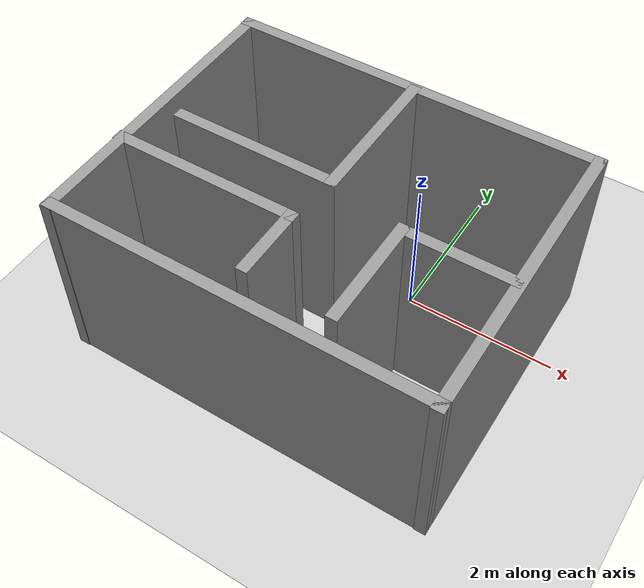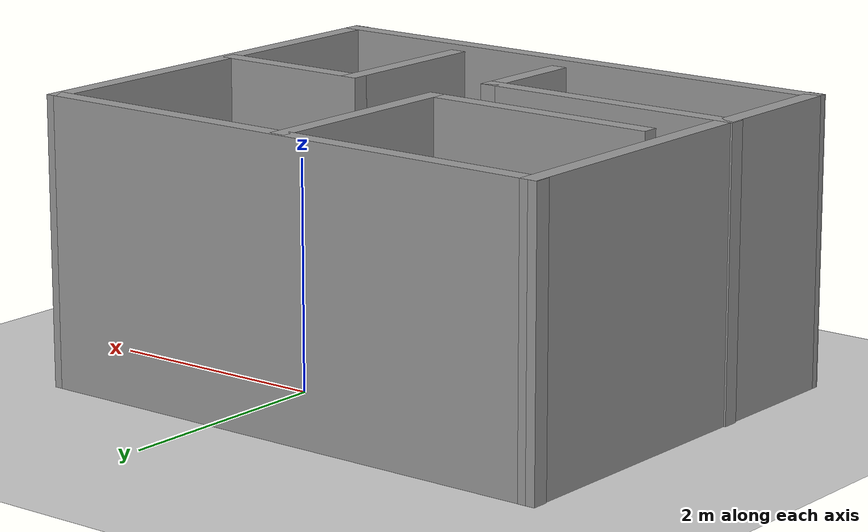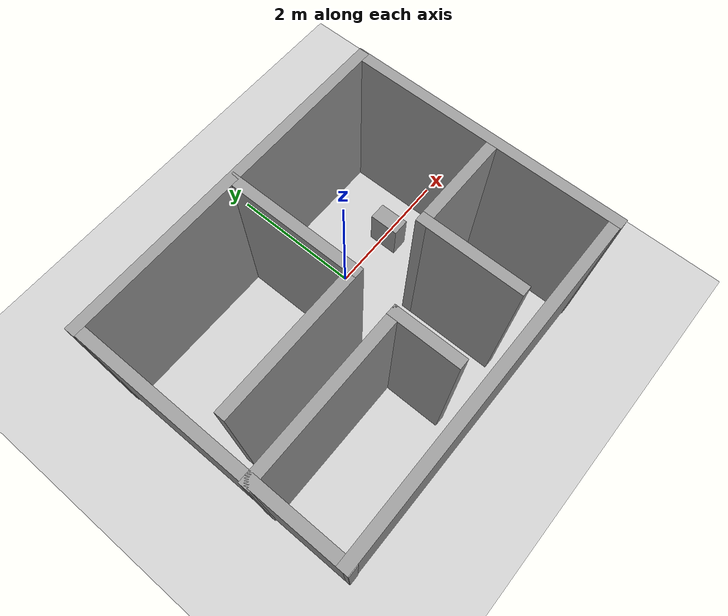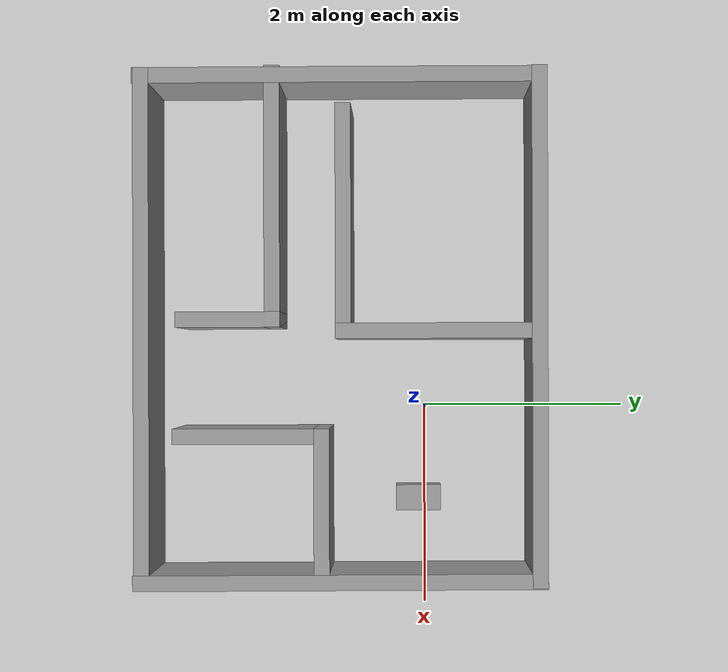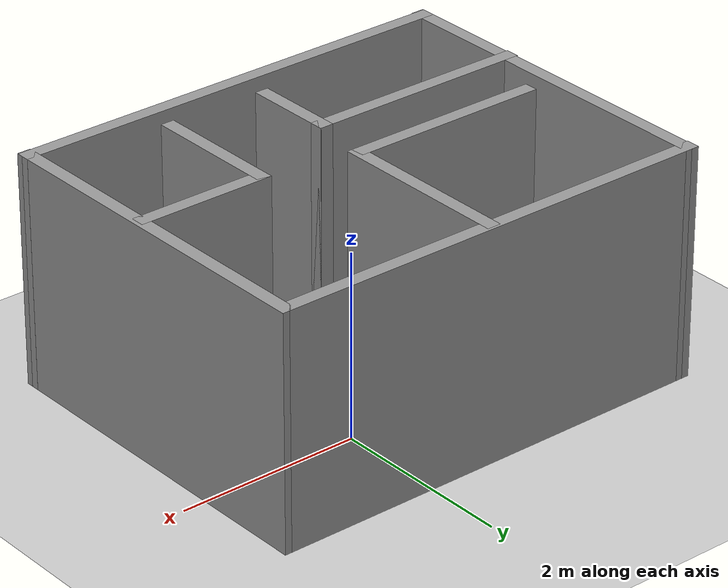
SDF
<sdf version="1.7">
 <world name="default">
  <light name="sun" type="directional">
   <pose>0 0 10 0 -0 0</pose>
   <diffuse>0.8 0.8 0.8 1</diffuse>
   <specular>0.2 0.2 0.2 1</specular>
   <attenuation>
    <range>1000</range>
    <constant>0.9</constant>
    <linear>0.01</linear>
    <quadratic>0.001</quadratic>
   </attenuation>
   <direction>-0.5 0.1 -0.9</direction>
   <spot><inner_angle>0</inner_angle><outer_angle>0</outer_angle><falloff>0</falloff></spot>
  </light>
  <model name="ground_plane">
   <static>1</static>
   <link name="link">
    <collision name="collision">
     <geometry><plane><normal>0 0 1</normal><size>100 100</size></plane></geometry>
     <surface>
      <contact><collide_bitmask>65535</collide_bitmask></contact>
      <friction><ode><mu>100</mu><mu2>50</mu2></ode></friction>
     </surface>
    </collision>
    <visual name="visual">
     <cast_shadows>0</cast_shadows>
     <geometry><plane><normal>0 0 1</normal><size>100 100</size></plane></geometry>
     <material>
      <script><uri>file://media/materials/scripts/gazebo.material</uri><name>Gazebo/Grey</name></script>
     </material>
    </visual>
   </link>
  </model>
  <gravity>0 0 -9.8</gravity>
  <magnetic_field>6e-06 2.3e-05 -4.2e-05</magnetic_field>
  <atmosphere type="adiabatic"/>
  <physics type="ode">
   <max_step_size>0.001</max_step_size>
   <real_time_factor>1</real_time_factor>
   <real_time_update_rate>1000</real_time_update_rate>
  </physics>
  <scene><ambient>0.4 0.4 0.4 1</ambient><background>0.7 0.7 0.7 1</background><shadows>1</shadows></scene>
  <audio><device>default</device></audio>
  <spherical_coordinates>
   <surface_model>EARTH_WGS84</surface_model>
   <latitude_deg>0</latitude_deg>
   <longitude_deg>0</longitude_deg>
   <elevation>0</elevation>
   <heading_deg>0</heading_deg>
  </spherical_coordinates>
  <model name="bedrooms">
   <pose>-2.23381 0.186808 0 0 -0 0</pose>
   <link name="Wall_0">
    <collision name="Wall_0_Collision">
     <geometry><box><size>5 0.15 2.5</size></box></geometry>
     <pose>0 0 1.25 0 -0 0</pose>
    </collision>
    <visual name="Wall_0_Visual">
     <pose>0 0 1.25 0 -0 0</pose>
     <geometry><box><size>5 0.15 2.5</size></box></geometry>
     <material>
      <script><uri>file://media/materials/scripts/gazebo.material</uri><name>Gazebo/Grey</name></script>
      <ambient>1 1 1 1</ambient>
     </material>
     <meta><layer>0</layer></meta>
    </visual>
    <pose>1.4674 0.912598 0 0 -0 0</pose>
   </link>
   <link name="Wall_1">
    <collision name="Wall_1_Collision">
     <geometry><box><size>3.97001 0.15 2.5</size></box></geometry>
     <pose>0 0 1.25 0 -0 0</pose>
    </collision>
    <visual name="Wall_1_Visual">
     <pose>0 0 1.25 0 -0 0</pose>
     <geometry><box><size>3.97001 0.15 2.5</size></box></geometry>
     <material>
      <script><uri>file://media/materials/scripts/gazebo.material</uri><name>Gazebo/Grey</name></script>
      <ambient>1 1 1 1</ambient>
     </material>
     <meta><layer>0</layer></meta>
    </visual>
    <pose>3.9074 -0.997402 0 0 -0 -1.56818</pose>
   </link>
   <link name="Wall_10">
    <collision name="Wall_10_Collision">
     <geometry><box><size>1 0.15 2.5</size></box></geometry>
     <pose>0 0 1.25 0 -0 0</pose>
    </collision>
    <visual name="Wall_10_Visual">
     <pose>0 0 1.25 0 -0 0</pose>
     <geometry><box><size>1 0.15 2.5</size></box></geometry>
     <material>
      <script><uri>file://media/materials/scripts/gazebo.material</uri><name>Gazebo/Grey</name></script>
      <ambient>1 1 1 1</ambient>
     </material>
     <meta><layer>0</layer></meta>
    </visual>
    <pose>1.3924 -2.0724 0 0 -0 -1.5708</pose>
   </link>
   <link name="Wall_12">
    <collision name="Wall_12_Collision">
     <geometry><box><size>1.5 0.15 2.5</size></box></geometry>
     <pose>0 0 1.25 0 -0 0</pose>
    </collision>
    <visual name="Wall_12_Visual">
     <pose>0 0 1.25 0 -0 0</pose>
     <geometry><box><size>1.5 0.15 2.5</size></box></geometry>
     <material>
      <script><uri>file://media/materials/scripts/gazebo.material</uri><name>Gazebo/Grey</name></script>
      <ambient>1 1 1 1</ambient>
     </material>
     <meta><layer>0</layer></meta>
    </visual>
    <pose>3.1874 -1.1774 0 0 -0 3.14159</pose>
   </link>
   <link name="Wall_13">
    <collision name="Wall_13_Collision">
     <geometry><box><size>1.5 0.15 2.5</size></box></geometry>
     <pose>0 0 1.25 0 -0 0</pose>
    </collision>
    <visual name="Wall_13_Visual">
     <pose>0 0 1.25 0 -0 0</pose>
     <geometry><box><size>1.5 0.15 2.5</size></box></geometry>
     <material>
      <script><uri>file://media/materials/scripts/gazebo.material</uri><name>Gazebo/Grey</name></script>
      <ambient>1 1 1 1</ambient>
     </material>
     <meta><layer>0</layer></meta>
    </visual>
    <pose>2.5124 -1.8524 0 0 -0 -1.5708</pose>
   </link>
   <link name="Wall_2">
    <collision name="Wall_2_Collision">
     <geometry><box><size>5 0.15 2.5</size></box></geometry>
     <pose>0 0 1.25 0 -0 0</pose>
    </collision>
    <visual name="Wall_2_Visual">
     <pose>0 0 1.25 0 -0 0</pose>
     <geometry><box><size>5 0.15 2.5</size></box></geometry>
     <material>
      <script><uri>file://media/materials/scripts/gazebo.material</uri><name>Gazebo/Grey</name></script>
      <ambient>1 1 1 1</ambient>
     </material>
     <meta><layer>0</layer></meta>
    </visual>
    <pose>1.4874 -2.8974 0 0 -0 3.14159</pose>
   </link>
   <link name="Wall_3">
    <collision name="Wall_3_Collision">
     <geometry><box><size>3.97001 0.15 2.5</size></box></geometry>
     <pose>0 0 1.25 0 -0 0</pose>
    </collision>
    <visual name="Wall_3_Visual">
     <pose>0 0 1.25 0 -0 0</pose>
     <geometry><box><size>3.97001 0.15 2.5</size></box></geometry>
     <material>
      <script><uri>file://media/materials/scripts/gazebo.material</uri><name>Gazebo/Grey</name></script>
      <ambient>1 1 1 1</ambient>
     </material>
     <meta><layer>0</layer></meta>
    </visual>
    <pose>-0.942598 -0.997402 0 0 -0 1.57341</pose>
   </link>
   <link name="Wall_5">
    <collision name="Wall_5_Collision">
     <geometry><box><size>2 0.15 2.5</size></box></geometry>
     <pose>0 0 1.25 0 -0 0</pose>
    </collision>
    <visual name="Wall_5_Visual">
     <pose>0 0 1.25 0 -0 0</pose>
     <geometry><box><size>2 0.15 2.5</size></box></geometry>
     <material>
      <script><uri>file://media/materials/scripts/gazebo.material</uri><name>Gazebo/Grey</name></script>
      <ambient>1 1 1 1</ambient>
     </material>
     <meta><layer>0</layer></meta>
    </visual>
    <pose>1.5024 -0.042402 0 0 -0 1.5708</pose>
   </link>
   <link name="Wall_7">
    <collision name="Wall_7_Collision">
     <geometry><box><size>2.25 0.15 2.5</size></box></geometry>
     <pose>0 0 1.25 0 -0 0</pose>
    </collision>
    <visual name="Wall_7_Visual">
     <pose>0 0 1.25 0 -0 0</pose>
     <geometry><box><size>2.25 0.15 2.5</size></box></geometry>
     <material>
      <script><uri>file://media/materials/scripts/gazebo.material</uri><name>Gazebo/Grey</name></script>
      <ambient>1 1 1 1</ambient>
     </material>
     <meta><layer>0</layer></meta>
    </visual>
    <pose>0.452402 -0.967402 0 0 -0 3.14159</pose>
   </link>
   <link name="Wall_9">
    <collision name="Wall_9_Collision">
     <geometry><box><size>2.5 0.15 2.5</size></box></geometry>
     <pose>0 0 1.25 0 -0 0</pose>
    </collision>
    <visual name="Wall_9_Visual">
     <pose>0 0 1.25 0 -0 0</pose>
     <geometry><box><size>2.5 0.15 2.5</size></box></geometry>
     <material>
      <script><uri>file://media/materials/scripts/gazebo.material</uri><name>Gazebo/Grey</name></script>
      <ambient>1 1 1 1</ambient>
     </material>
     <meta><layer>0</layer></meta>
    </visual>
    <pose>0.217402 -1.6474 0 0 -0 0</pose>
   </link>
   <static>1</static>
  </model>
  <model name="unit_box">
   <pose>0.925498 -0.05984 0.303875 0 -0 0.002377</pose>
   <link name="link">
    <inertial>
     <mass>1</mass>
     <inertia>
      <ixx>0.166667</ixx>
      <ixy>0</ixy>
      <ixz>0</ixz>
      <iyy>0.166667</iyy>
      <iyz>0</iyz>
      <izz>0.166667</izz>
     </inertia>
    </inertial>
    <collision name="collision">
     <geometry><box><size>0.254327 0.444331 0.607749</size></box></geometry>
    </collision>
    <visual name="visual">
     <geometry><box><size>0.254327 0.444331 0.607749</size></box></geometry>
     <material>
      <script><name>Gazebo/Grey</name><uri>file://media/materials/scripts/gazebo.material</uri></script>
     </material>
    </visual>
   </link>
  </model>
 </world>
</sdf>
